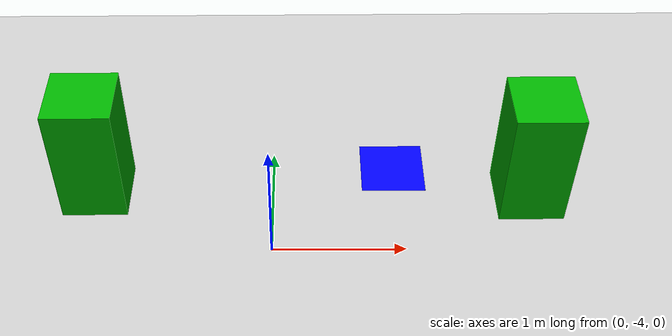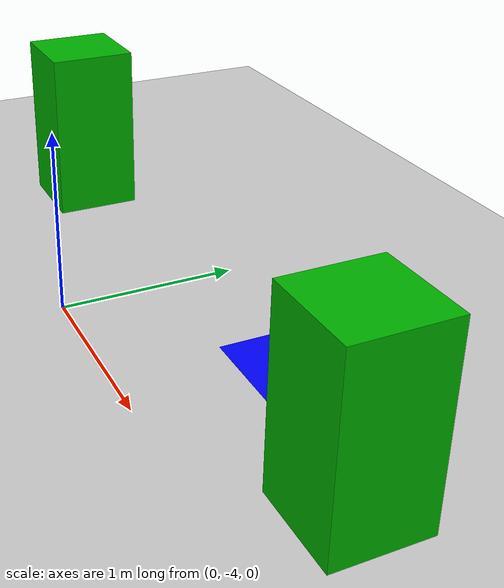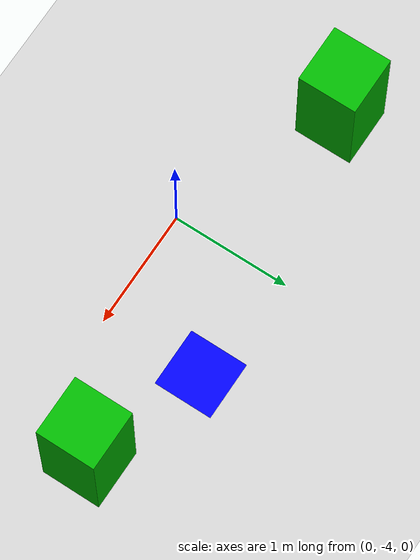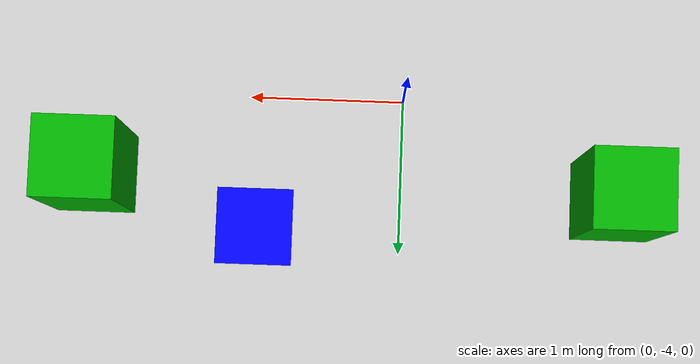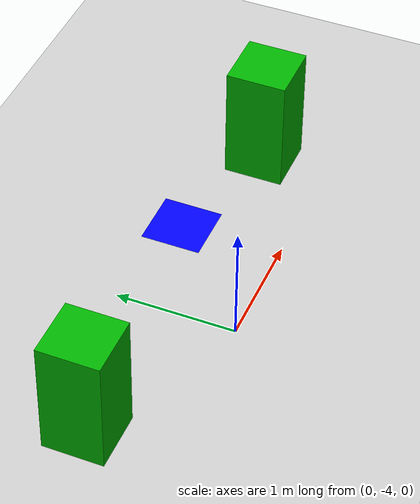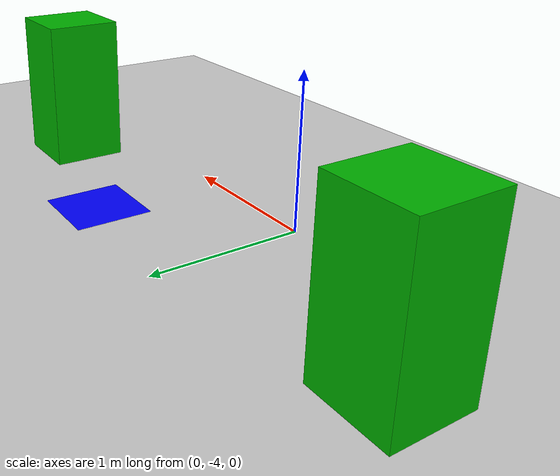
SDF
<sdf version="1.6">
 <world name="default">
  <model name="ground_plane">
   <static>1</static>
   <link name="link">
    <collision name="collision">
     <geometry><plane><normal>0 0 1</normal><size>100 100</size></plane></geometry>
     <surface><friction><ode><mu>100</mu><mu2>50</mu2></ode></friction></surface>
    </collision>
    <visual name="visual">
     <cast_shadows>0</cast_shadows>
     <geometry><plane><normal>0 0 1</normal><size>100 100</size></plane></geometry>
     <material>
      <script><uri>file://media/materials/scripts/gazebo.material</uri><name>Gazebo/Grey</name></script>
     </material>
    </visual>
   </link>
  </model>
  <model name="green_box">
   <link name="link_0">
    <inertial>
     <mass>0.248832</mass>
     <inertia>
      <ixx>0.0258912</ixx>
      <ixy>0</ixy>
      <ixz>0</ixz>
      <iyy>0.0259005</iyy>
      <iyz>0</iyz>
      <izz>0.0103197</izz>
     </inertia>
    </inertial>
    <visual name="visual">
     <geometry><box><size>0.499059 0.498611 1</size></box></geometry>
     <material>
      <lighting>1</lighting>
      <script><uri>file://media/materials/scripts/gazebo.material</uri><name>Gazebo/Grey</name></script>
      <shader type="vertex"><normal_map>__default__</normal_map></shader>
      <ambient>0 0.3 0 1</ambient>
      <diffuse>0 0.7 0 1</diffuse>
      <specular>0.01 0.01 0.01 1</specular>
      <emissive>0 0 0 1</emissive>
     </material>
    </visual>
    <collision name="collision">
     <geometry><box><size>0.499059 0.498611 1</size></box></geometry>
     <surface>
      <friction>
       <ode><mu>1</mu><mu2>1</mu2><fdir1>0 0 0</fdir1><slip1>0</slip1><slip2>0</slip2></ode>
       <torsional>
        <coefficient>1</coefficient>
        <patch_radius>0</patch_radius>
        <surface_radius>0</surface_radius>
        <use_patch_radius>1</use_patch_radius>
        <ode><slip>0</slip></ode>
       </torsional>
      </friction>
      <bounce><restitution_coefficient>0</restitution_coefficient><threshold>1e+06</threshold></bounce>
      <contact>
       <collide_without_contact>0</collide_without_contact>
       <collide_without_contact_bitmask>1</collide_without_contact_bitmask>
       <collide_bitmask>1</collide_bitmask>
       <ode>
        <soft_cfm>0</soft_cfm>
        <soft_erp>0.2</soft_erp>
        <kp>1e+13</kp>
        <kd>1</kd>
        <max_vel>0.01</max_vel>
        <min_depth>0</min_depth>
       </ode>
       <bullet>
        <split_impulse>1</split_impulse>
        <split_impulse_penetration_threshold>-0.01</split_impulse_penetration_threshold>
        <soft_cfm>0</soft_cfm>
        <soft_erp>0.2</soft_erp>
        <kp>1e+13</kp>
        <kd>1</kd>
       </bullet>
      </contact>
     </surface>
    </collision>
   </link>
   <static>0</static>
   <pose>-1.36615 -3.38616 0.500001 2e-06 -1e-06 -7e-06</pose>
  </model>
  <model name="green_box_clone">
   <link name="link_0">
    <inertial>
     <mass>0.248832</mass>
     <inertia>
      <ixx>0.0258912</ixx>
      <ixy>0</ixy>
      <ixz>0</ixz>
      <iyy>0.0259005</iyy>
      <iyz>0</iyz>
      <izz>0.0103197</izz>
     </inertia>
    </inertial>
    <visual name="visual">
     <geometry><box><size>0.499059 0.498611 1</size></box></geometry>
     <material>
      <lighting>1</lighting>
      <script><uri>file://media/materials/scripts/gazebo.material</uri><name>Gazebo/Grey</name></script>
      <shader type="vertex"><normal_map>__default__</normal_map></shader>
      <ambient>0 0.3 0 1</ambient>
      <diffuse>0 0.7 0 1</diffuse>
      <specular>0.01 0.01 0.01 1</specular>
      <emissive>0 0 0 1</emissive>
     </material>
    </visual>
    <collision name="collision">
     <geometry><box><size>0.499059 0.498611 1</size></box></geometry>
     <surface>
      <friction>
       <ode><mu>1</mu><mu2>1</mu2><fdir1>0 0 0</fdir1><slip1>0</slip1><slip2>0</slip2></ode>
       <torsional>
        <coefficient>1</coefficient>
        <patch_radius>0</patch_radius>
        <surface_radius>0</surface_radius>
        <use_patch_radius>1</use_patch_radius>
        <ode><slip>0</slip></ode>
       </torsional>
      </friction>
      <bounce><restitution_coefficient>0</restitution_coefficient><threshold>1e+06</threshold></bounce>
      <contact>
       <collide_without_contact>0</collide_without_contact>
       <collide_without_contact_bitmask>1</collide_without_contact_bitmask>
       <collide_bitmask>1</collide_bitmask>
       <ode>
        <soft_cfm>0</soft_cfm>
        <soft_erp>0.2</soft_erp>
        <kp>1e+13</kp>
        <kd>1</kd>
        <max_vel>0.01</max_vel>
        <min_depth>0</min_depth>
       </ode>
       <bullet>
        <split_impulse>1</split_impulse>
        <split_impulse_penetration_threshold>-0.01</split_impulse_penetration_threshold>
        <soft_cfm>0</soft_cfm>
        <soft_erp>0.2</soft_erp>
        <kp>1e+13</kp>
        <kd>1</kd>
       </bullet>
      </contact>
     </surface>
    </collision>
   </link>
   <static>0</static>
   <pose>1.97946 -3.45987 0.5 -1e-06 -1e-06 0.00022</pose>
  </model>
  <model name="Blue_Tile_1">
   <link name="link_0">
    <inertial>
     <mass>1</mass>
     <inertia>
      <ixx>0.166667</ixx>
      <ixy>0</ixy>
      <ixz>0</ixz>
      <iyy>0.166667</iyy>
      <iyz>0</iyz>
      <izz>0.166667</izz>
     </inertia>
    </inertial>
    <visual name="visual">
     <geometry><box><size>0.5 0.5 0.0001</size></box></geometry>
     <material>
      <lighting>1</lighting>
      <script><uri>file://media/materials/scripts/gazebo.material</uri><name>Gazebo/Grey</name></script>
      <shader type="vertex"><normal_map>__default__</normal_map></shader>
      <ambient>0 0 1 1</ambient>
      <diffuse>0 0 1 1</diffuse>
      <specular>0 0 0.01 1</specular>
      <emissive>0 0 0 1</emissive>
     </material>
    </visual>
    <collision name="collision">
     <geometry><box><size>0.5 0.5 1e-05</size></box></geometry>
     <surface>
      <friction>
       <ode><mu>1</mu><mu2>1</mu2><fdir1>0 0 0</fdir1><slip1>0</slip1><slip2>0</slip2></ode>
       <torsional>
        <coefficient>1</coefficient>
        <patch_radius>0</patch_radius>
        <surface_radius>0</surface_radius>
        <use_patch_radius>1</use_patch_radius>
        <ode><slip>0</slip></ode>
       </torsional>
      </friction>
      <bounce><restitution_coefficient>0</restitution_coefficient><threshold>1e+06</threshold></bounce>
      <contact>
       <collide_without_contact>0</collide_without_contact>
       <collide_without_contact_bitmask>1</collide_without_contact_bitmask>
       <collide_bitmask>1</collide_bitmask>
       <ode>
        <soft_cfm>0</soft_cfm>
        <soft_erp>0.2</soft_erp>
        <kp>1e+13</kp>
        <kd>1</kd>
        <max_vel>0.01</max_vel>
        <min_depth>0</min_depth>
       </ode>
       <bullet>
        <split_impulse>1</split_impulse>
        <split_impulse_penetration_threshold>-0.01</split_impulse_penetration_threshold>
        <soft_cfm>0</soft_cfm>
        <soft_erp>0.2</soft_erp>
        <kp>1e+13</kp>
        <kd>1</kd>
       </bullet>
      </contact>
     </surface>
    </collision>
   </link>
   <static>1</static>
   <pose>0.946916 -3.15042 0 0 -0 0</pose>
  </model>
 </world>
</sdf>
